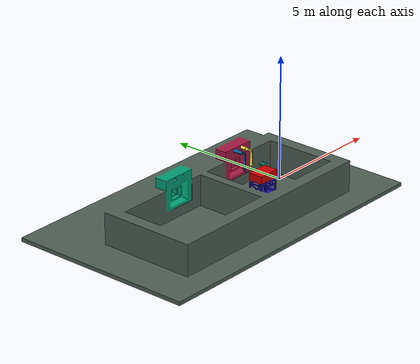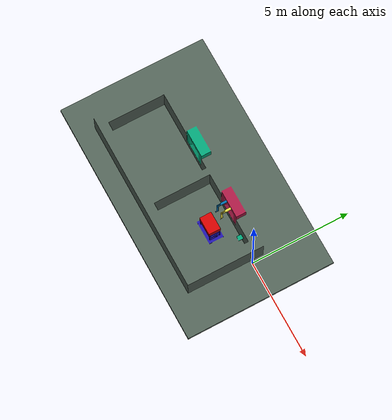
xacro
<?xml version="1.0"?>
<robot name="mrs" xmlns:xacro="http://www.ros.org/wiki/xacro">

  <!-- Constants for robot -->
  <xacro:include filename="$(find mrs_description)/urdf/common_mrs.xacro" />
  <!-- Import all Gazebo-customization elements, including Gazebo colors -->
  <xacro:include filename="$(find mrs_description)/urdf/power_base/ball_bearing.urdf.xacro" />
  <xacro:include filename="$(find mrs_description)/urdf/JM/jm.xacro" />
  <xacro:include filename="$(find mrs_description)/urdf/PCM/pcm.xacro" />

  <!-- Used for fixing robot to Gazebo 'base_link' -->
  <link name="world" >
    <inertial>
        <mass value="0.1"/>
        <origin xyz="0 0 0" rpy="0 0 0"/>
        <inertia ixx="1.0" ixy="0.0" ixz="0.0" iyy="1.0" iyz="0.0" izz="1.0"/>
      </inertial>
      <visual>
        <origin xyz="0 0 0" rpy="0 0 0"/>
        <geometry>
          <box size="0.001 0.001 0.001"/>
        </geometry>
        <material name="Red"/>
      </visual>
      <collision>
        <origin xyz="0 0 0" rpy="0 0 0"/>
        <geometry>
          <box size="0.001 0.001 0.001"/>
        </geometry>
      </collision>
    </link>
  <joint name="fixed" type="fixed">
    <axis xyz="1 0 0 " />
    <origin xyz="0 0 0.05" rpy="0 ${-pi/2} 0" />
    <parent link="world" />
    <child link="base_footprint" />
  </joint>

  <!-- Fictitious Base Link is a fictitious link(frame) that is on the ground below
    base_link origin, Dummy link-->

  <link name="base_footprint">
      <mass value="1.0" />
      <visual>
        <geometry>
          <box size="0.07 0.07 0.14" />
        </geometry>
        <material name="Blue">
        </material>
      </visual>
      <collision>
        <geometry>
          <box size="0.05 0.05 0.04" />
        </geometry>
      </collision>
      <xacro:default_inertial mass="0.15" I_tensor="8.166e-4"/>
  </link>
      <gazebo reference="base_footprint">
    <material>Gazebo/Blue</material>
    <selfCollide>false</selfCollide>
  </gazebo>

  <link name="link_hotcell">
        <!--> Not necessary to declare inertia as the body is static<-->
      <collision name="collision_hotcell">
        <geometry>
            <mesh filename="package://mrs_gazebo/models/Hotcell/meshes/Hotcell.dae" scale="5.0 5.0 5.0"/>
        </geometry>
      </collision>
      <visual name="visual_hotcell">
        <geometry>
           <mesh filename="package://mrs_gazebo/models/Hotcell/meshes/Hotcell.dae" scale="5.0 5.0 5.0"/>
        </geometry>
      </visual>
    </link>
    <link name="link_manipulator_1">
        <!--> Not necessary to declare inertia as the body is static<-->

      <collision name="collision_man1">

        <geometry>
           <mesh filename="package://mrs_gazebo/models/MT200_nuc_manipulator/meshes/Manipulator.dae" scale="0.50 0.5 0.5"/>
        </geometry>
      </collision>
      <visual name="visual_man1">
        <geometry>
           <mesh filename="package://mrs_gazebo/models/MT200_nuc_manipulator/meshes/Manipulator.dae" scale="0.50 0.5 0.5"/>
        </geometry>
      </visual>
    </link>
     <link name="link_manipulator_2">
        <!--> Not necessary to declare inertia as the body is static<-->

      <collision name="collision_man2">
        <geometry>
           <mesh filename="package://mrs_gazebo/models/MT200_nuc_manipulator/meshes/Manipulator.dae" scale="0.50 0.5 0.5"/>
        </geometry>
      </collision>
      <visual name="visual_man2">
        <geometry>
           <mesh filename="package://mrs_gazebo/models/MT200_nuc_manipulator/meshes/Manipulator.dae" scale="0.50 0.5 0.5"/>
        </geometry>
      </visual>
    </link>

    <link name="manipable_box">

      <collision name="box_coll">
        <geometry>
          <box size="0.9 0.60 0.3"/>
        </geometry>
      </collision>
      <visual name="box_visual">
        <geometry>
            <box size="0.9 0.60 0.3"/>
        </geometry>
              <material name="red"/>
      </visual>
    </link>
<joint name="fixed_hotcell_joint" type="fixed">
    <origin xyz="0 0.05 0" rpy="0 0 0"/>
    <child link="link_hotcell"/>
    <parent link="world"/>
  </joint>
    <joint name="fixed_manipulator_joint1" type="fixed">
    <origin xyz="-2.26 -0.15 0.69" rpy="0 0 0"/>
    <child link="link_manipulator_1"/>
    <parent link="link_hotcell"/>
  </joint>
<joint name="fixed_manipulator_joint2" type="fixed">
    <origin xyz="-2.65 -0.15 0.69" rpy="0 0 0"/>
    <child link="link_manipulator_2"/>
    <parent link="link_hotcell"/>
  </joint>
   <joint name="fixed_maniBox_joint1" type="fixed">
    <origin xyz="-2.2 -1.05 1.25" rpy="0 0 0"/>
    <child link="manipable_box"/>
    <parent link="link_hotcell"/>
  </joint>

</robot>

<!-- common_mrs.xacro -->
<robot name="mrs" xmlns:xacro="http://www.ros.org/wiki/xacro">

	<!-- Auxiliar Values -->
	<property name="pi" value="3.1415926535897931" />
	<property name="max_effort" value="20" />
	<property name="max_velocity" value="10" />

	<!-- Links Mass -->
	<property name="j1_mass" value="0.137" />
	<property name="j2_mass" value="0.01" />
	<property name="j3_mass" value="0.027" />
	<property name="w1_mass" value="0.089" />
	<property name="pc_mass" value="0.249" />

	<!-- Links COG -->
	<property name="j1_cog" value="-0.024 -0.021 0" />
	<property name="j2_cog" value="1.068e-4 0 4.22e-4" />
	<property name="j3_cog" value="-5.121e-4 0.014 -0.012" />
	<property name="w1_cog" value="-0.003 0 0" />
	<property name="pc_cog" value="-0.034 0 0" />

	<!-- Links Inertia -->
	<macro name="j1_inertia">
		<inertia ixx="1.043e-4" ixy="4.237e-5" ixz="8.843e-7"
		iyy="1.259e-5" iyz="-2.329e-8" izz="1.759e-4" />
	</macro>
	<macro name="j2_inertia">
		<inertia 	ixx="1.34e-6" 	ixy="2.119e-11"		ixz="7.365e-11"
							iyy="1.326e-6"	iyz="2.329e-12"
							izz="2.006e-6" />
	</macro>
	<macro name="j3_inertia">
		<inertia 	ixx="9.335e-6" ixy="1.198e-8" ixz="5.264e-9"
							iyy="5.505e-6" iyz="-2.699e-6"
							izz="6.39e-6" />
	</macro>
	<macro name="pc_inertia">
		<inertia 	ixx="4.35e-4" ixy="-5.575e-21" ixz="4.256e-21"
							iyy="4.82e-4" iyz="3.176e-21"
							izz="1.809e-4" />
	</macro>
	<macro name="w1_inertia">
		<inertia 	ixx="1.036e-4" ixy="0" ixz="0"
							iyy="5.359e-5" iyz="0"
							izz="5.359e-5" />
	</macro>
		<!-- Links orientation and origin -->
	<macro name="j1_ori">
      <origin xyz="0 0 0" rpy="${-pi/2} 0 0"/>
	</macro>
	<macro name="j2_ori">
		<origin xyz="0.044 0 0" rpy="0 0 0" />
	</macro>
	<macro name="j3_ori">
      <origin xyz="-0.5 0 0" rpy="0 0 ${-pi/2} "/>
	</macro>
	<macro name="pc_ori">
      <origin xyz="0.5 0 0" rpy="0 0 0"/>
	</macro>
	<macro name="w1_ori">
      <origin xyz="0 0 0" rpy="0 0 0 "/>
	</macro>

	<!-- MESH FILES -->
	<property name="j1_mesh" value="package://mrs_description/meshes/J1.dae" />
		<!--property name="j1_mesh" value="package://mrs_description/meshes/BASE.dae" /-->
	<property name="j2_mesh" value="package://mrs_description/meshes/J2.dae" />
	<property name="j3_mesh" value="package://mrs_description/meshes/J3.dae" />
	<property name="pc_mesh" value="package://mrs_description/meshes/Pc.dae" />
	<property name="w1_mesh" value="package://mrs_description/meshes/WR1.dae" />

	<!-- Link's Macro -->
	<macro name="create_link" params="name color mesh mass cog *inertia instance prefix">
		<link name="${instance}_${prefix}_${name}">
			<visual>
				<!--xacro:insert_block name="ori" /-->
				<geometry>
					<mesh filename="${mesh}" />
				</geometry>
				<material name="${color}" />
			</visual>
			<collision>
				<!--xacro:insert_block name="ori" /-->
				<geometry>
					<mesh filename="${mesh}" />
				</geometry>
			</collision>
			<inertial>
				<origin xyz="${cog}" rpy="0 0 0" />
				<mass value="${mass}" />
				<xacro:insert_block name="inertia" />
			</inertial>
		</link>
	</macro>

	<macro name="create_link_no_collision" params="name color mesh mass cog *inertia instance prefix">
		<link name="${instance}_${prefix}_${name}">
			<visual>
				<!--xacro:insert_block name="ori" /-->
				<geometry>
					<mesh filename="${mesh}" />
				</geometry>
				<material name="${color}" />
			</visual>
			<inertial>
				<origin xyz="${cog}" rpy="0 0 0" />
				<mass value="${mass}" />
				<xacro:insert_block name="inertia" />
			</inertial>
		</link>
	</macro>
	<!-- Transmission's Macro -->
	<macro name="simple_transmission" params="joint">
		<transmission name="${joint}tran">
			<type>transmission_interface/SimpleTransmission</type>
			<joint name="${joint}" />
			<actuator name="${joint}_motor">
				<hardwareInterface>EffortJointInterface</hardwareInterface>
				<mechanicalReduction>1</mechanicalReduction>
			</actuator>
		</transmission>
	</macro>

	<!-- Joints Dynamics -->
	<property name="j1_damping" value="0" />
	<property name="j2_damping" value="0" />
	<property name="j3_damping" value="0" />
	<property name="w1_damping" value="0" />

</robot>

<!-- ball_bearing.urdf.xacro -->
<robot xmlns:xacro="http://www.ros.org/wiki/xacro">

		<!-- Constants for robot -->
	<xacro:include filename="$(find mrs_description)/urdf/common_mrs.xacro" />
  <!-- simplified box collision geometry for base -->

  <property name="mass" value="22.0"/>

 <macro name="Ball_bearing" params="mass instance dia x y z parent">
  <joint name="bearing_joint_${instance}" type="fixed">
    <origin rpy="0 0 0" xyz="${x} ${y} ${z}"/>
    <parent link="${parent}"/>
    <child link="bearing_link1_${instance}"/>
  </joint>
  <link name="bearing_link1_${instance}">
    <inertial>
      <mass value="${mass}"/>
      <origin xyz="0 0 0"/>
      <inertia ixx="${2/5*mass*dia/2*dia/2}" ixy="0" ixz="0" iyy="${2/5*mass*dia/2*dia/2}" iyz="0" izz="${2/5*mass*dia/2*dia/2}"/>
    </inertial>

  </link>
   <link name="bearing_link2_${instance}">
      <inertial>
        <mass value="${mass}"/>
        <origin xyz="0 0 0"/>
        <inertia ixx="${2/5*mass*dia/2*dia/2}" ixy="0" ixz="0" iyy="${2/5*mass*dia/2*dia/2}" iyz="0" izz="${2/5*mass*dia/2*dia/2}"/>
      </inertial>
      <visual>
      <origin rpy="0 0 0" xyz="0 0 0"/>
      <geometry>
        <sphere radius="${dia/2}"/>
      </geometry>
      <material name="Orange"/>
    </visual>
    <collision>
      <origin rpy="0 0 0" xyz="0 0 0"/>
      <geometry>
        <sphere radius="${dia/2}"/>
      </geometry>
      <contact_coefficients> <mu>0.0</mu> </contact_coefficients>
    </collision>
    </link>
      <joint name="bearing_joint2_${instance}" type="fixed">
    <origin rpy="0 0 0" xyz="0 0 0"/>
    <parent link="bearing_link1_${instance}"/>
    <child link="bearing_link2_${instance}"/>
  </joint>

  	<gazebo reference="bearing_link1_${instance}">
		<material>Gazebo/Black</material>
		<selfCollide>false</selfCollide>
	</gazebo>
	<gazebo reference="bearing_link2_${instance}">
		<material>Gazebo/Black</material>
		<selfCollide>false</selfCollide>
	</gazebo>

	</macro>
	</robot>

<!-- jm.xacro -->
<robot name="mrs" xmlns:xacro="http://www.ros.org/wiki/xacro">

  <!-- Constants for robot -->
  <xacro:include filename="$(find mrs_description)/urdf/common_mrs.xacro" />
  <!-- Import all Gazebo-customization elements, including Gazebo colors -->
  <xacro:include filename="$(find mrs_description)/urdf/JM/jm.gazebo.xacro" />
  <!-- Import Rviz colors -->

  <xacro:include filename="$(find mrs_description)/urdf/materials.urdf.xacro" />

<macro name="JM1_armconnect" params="name prefix instance parent">
  <!-- Links -->
  <create_link name="j1_link" color="Blue" mesh="${j1_mesh}"
    cog="${j1_cog}" mass="${j1_mass}" instance="${instance}" prefix="${prefix}">
    <j1_inertia />
  </create_link>

  <create_link_no_collision name="j2_link" color="Blue" mesh="${j2_mesh}"
    cog="${j2_cog}" mass="${j2_mass}" instance="${instance}" prefix="${prefix}">
    <j2_inertia />
  </create_link_no_collision>
  <create_link_no_collision name="j3_link" color="Blue" mesh="${j3_mesh}"
    cog="${j3_cog}" mass="${j3_mass}" instance="${instance}" prefix="${prefix}">
    <j3_inertia />
  </create_link_no_collision>
  <create_link name="w1_link" color="Blue" mesh="${w1_mesh}"
    cog="${w1_cog}" mass="${w1_mass}" instance="${instance}" prefix="${prefix}">
    <w1_inertia />
  </create_link>

  <!-- Joints -->

  <joint name="${instance}_${prefix}_j3" type="continuous">
    <child link="${instance}_${prefix}_w1_link" />
    <parent link="${parent}" />
    <axis xyz="0 0 1 " />
    <origin xyz="0 0 0.01" rpy="${-pi/2} 0 0" />
    <limit lower="${-pi/2}" upper="${pi/2}" effort="${max_effort}"
      velocity="${max_velocity}" />
    <dynamics damping="${j3_damping}" />
 </joint>
  <joint name="${instance}_${prefix}_j2_fixed" type="fixed">
    <child link="${instance}_${prefix}_j3_link" />
    <parent link="${instance}_${prefix}_w1_link" />
    <origin xyz="0.045 0 0" rpy="0 0 ${pi/2}" />
  </joint>

  <joint name="${instance}_${prefix}_j2" type="revolute">
    <child link="${instance}_${prefix}_j1_link" />
    <parent link="${instance}_${prefix}_j3_link" />
    <axis xyz="1 0 0 " />
    <origin xyz="0 0 0" rpy="0 ${-pi/2} 0" />
    <limit lower="${-pi/2}" upper="${pi/2}" effort="${max_effort}"
      velocity="${max_velocity}" />
    <dynamics damping="${j2_damping}" />
  </joint>

  <joint name="${instance}_${prefix}_j1" type="continuous">
    <child link="${instance}_${prefix}_j2_link" />
    <parent link="${instance}_${prefix}_j1_link" />
    <axis xyz="0 0 1 " />
    <origin xyz="0 -0.058 0" rpy="${pi/2} 0 0" />
    <limit lower="${-pi/2}" upper="${pi/2}" effort="${max_effort}"
      velocity="${max_velocity}" />
    <dynamics damping="${j3_damping}" />
  </joint>

    <!-- Transmissions -->
  <simple_transmission joint="${instance}_${prefix}_j1" />
  <simple_transmission joint="${instance}_${prefix}_j2" />
  <simple_transmission joint="${instance}_${prefix}_j3" />

    <!-- Gazebo  -->
  <xacro:JMG name="${name}_gazebo" prefix="${prefix}" instance="${instance}" />

  </macro>

<macro name="JM1" params="name prefix instance parent">
  <!-- Links -->
  <create_link name="j1_link" color="Blue" mesh="${j1_mesh}"
    cog="${j1_cog}" mass="${j1_mass}" instance="${instance}" prefix="${prefix}">
    <j1_inertia />
  </create_link>

  <create_link_no_collision name="j2_link" color="Blue" mesh="${j2_mesh}"
    cog="${j2_cog}" mass="${j2_mass}" instance="${instance}" prefix="${prefix}">
    <j2_inertia />
  </create_link_no_collision>
  <create_link_no_collision name="j3_link" color="Blue" mesh="${j3_mesh}"
    cog="${j3_cog}" mass="${j3_mass}" instance="${instance}" prefix="${prefix}">
    <j3_inertia />
  </create_link_no_collision>
  <create_link name="w1_link" color="Blue" mesh="${w1_mesh}"
    cog="${w1_cog}" mass="${w1_mass}" instance="${instance}" prefix="${prefix}">
    <w1_inertia />
  </create_link>

  <!-- Joints -->

    <joint name="${instance}_${prefix}_j3" type="fixed">
    <child link="${instance}_${prefix}_w1_link" />
    <parent link="${parent}" />
    <axis xyz="0 0 1 " />
    <origin xyz="0 0 0.01" rpy="0 ${-pi/2} 0" />
  </joint>

  <joint name="${instance}_${prefix}_j2_fixed" type="fixed">
    <child link="${instance}_${prefix}_j3_link" />
    <parent link="${instance}_${prefix}_w1_link" />
    <origin xyz="0.045 0 0" rpy="0 0 ${pi/2}" />
  </joint>

  <joint name="${instance}_${prefix}_j2" type="revolute">
    <child link="${instance}_${prefix}_j1_link" />
    <parent link="${instance}_${prefix}_j3_link" />
    <axis xyz="1 0 0 " />
    <origin xyz="0 0 0" rpy="0 ${-pi/2} 0" />
    <limit lower="${-pi/2}" upper="${pi/2}" effort="${max_effort}"
      velocity="${max_velocity}" />
    <dynamics damping="${j2_damping}" />
  </joint>

  <joint name="${instance}_${prefix}_j1" type="revolute">
    <child link="${instance}_${prefix}_j2_link" />
    <parent link="${instance}_${prefix}_j1_link" />
    <axis xyz="0 0 1 " />
    <origin xyz="0 -0.058 0" rpy="${pi/2} 0 0" />
    <limit lower="${-pi/2}" upper="${pi/2}" effort="${max_effort}"
      velocity="${max_velocity}" />
    <dynamics damping="${j3_damping}" />
  </joint>

    <!-- Transmissions -->
  <simple_transmission joint="${instance}_${prefix}_j1" />
  <simple_transmission joint="${instance}_${prefix}_j2" />

    <!-- Gazebo  -->
  <xacro:JMG name="${name}_gazebo" prefix="${prefix}" instance="${instance}" />

  </macro>

<macro name="JM1_kinematic" params="name prefix instance parent">
  <!-- Links -->
  <create_link name="j1_link" color="Grey" mesh="${j1_mesh}"
    cog="${j1_cog}" mass="${j1_mass}" instance="${instance}" prefix="${prefix}">
    <j1_inertia />
  </create_link>

  <link name="1_L1_j2_link">
      <visual>
        <geometry>
          <cylinder length="0.15" radius=".03" />
        </geometry>
        <origin rpy="0 0 0 " xyz="0 0 0" />
        <material name="Gray">
          <color rgba=".7 .7 .7 1" />
        </material>
      </visual>
      <collision>
        <geometry>
          <cylinder length="0.06" radius=".01" />
        </geometry>
      </collision>
    </link>
  <create_link name="w1_link" color="Black" mesh="${w1_mesh}"
    cog="${w1_cog}" mass="${w1_mass}" instance="${instance}" prefix="${prefix}">
    <w1_inertia />
  </create_link>

  <!-- Joints -->

  <joint name="${instance}_${prefix}_j3" type="revolute">
    <child link="${instance}_${prefix}_w1_link" />
    <parent link="${parent}" />
    <axis xyz="1 0 0 " />
    <origin xyz="0 0 0.01" rpy="0 ${-pi/2} 0" />
    <limit lower="${-pi}" upper="${pi}" effort="${max_effort}"
      velocity="${max_velocity}" />
    <dynamics damping="${j3_damping}" />

  </joint>

  <joint name="${instance}_${prefix}_j2" type="revolute">
    <child link="${instance}_${prefix}_j1_link" />
    <parent link="${instance}_${prefix}_w1_link" />
    <axis xyz="1 0 0 " />
    <origin xyz="0.045 0 0" rpy="0 ${pi/2} ${pi/2}" />
    <limit lower="${-pi/2}" upper="${pi/2}" effort="${max_effort}"
      velocity="${max_velocity}" />
    <dynamics damping="${j2_damping}" />
  </joint>

  <joint name="${instance}_${prefix}_j1" type="revolute">
    <child link="${instance}_${prefix}_j2_link" />
    <parent link="${instance}_${prefix}_j1_link" />
    <axis xyz="0 1 0 " />
    <origin xyz="0 -0.125 0" rpy="${pi/2} 0 0" />
    <limit lower="${-pi/2}" upper="${pi/2}" effort="${max_effort}"
      velocity="${max_velocity}" />
    <dynamics damping="${j3_damping}" />
  </joint>

    <!-- Transmissions -->
  <simple_transmission joint="${instance}_${prefix}_j1" />
  <simple_transmission joint="${instance}_${prefix}_j2" />
  <simple_transmission joint="${instance}_${prefix}_j3" />

    <!-- Gazebo  -->
  <xacro:JMG name="${name}_gazebo" prefix="${prefix}" instance="${instance}" />
  </macro>
<macro name="JM2" params="name prefix instance parent reflect shift shift2">
  <create_link name="j1_link" color="Blue" mesh="${j1_mesh}"
    cog="${j1_cog}" mass="${j1_mass}" instance="${instance}" prefix="${prefix}">
    <j1_inertia />
  </create_link>

  <create_link_no_collision name="j2_link" color="Blue" mesh="${j2_mesh}"
    cog="${j2_cog}" mass="${j2_mass}" instance="${instance}" prefix="${prefix}">
    <j2_inertia />
  </create_link_no_collision>
  <create_link_no_collision name="j3_link" color="Blue" mesh="${j3_mesh}"
    cog="${j3_cog}" mass="${j3_mass}" instance="${instance}" prefix="${prefix}">
    <j3_inertia />
  </create_link_no_collision>
  <create_link name="w1_link" color="Blue" mesh="${w1_mesh}"
    cog="${w1_cog}" mass="${w1_mass}" instance="${instance}" prefix="${prefix}">
    <w1_inertia />
  </create_link>

  <joint name="${instance}_${prefix}_j3" type="revolute">
    <child link="${instance}_${prefix}_w1_link" />
    <parent link="${instance}_${prefix}_j3_link" />
    <axis xyz="1 0 0" />
    <origin xyz="0 0.05 0" rpy="0 0 ${-pi/2}" />
    <limit lower="${-pi}" upper="${pi}" effort="${max_effort}"
      velocity="${max_velocity}" />
    <dynamics damping="${j1_damping}" />
  </joint>

  <joint name="${instance}_${prefix}_j2" type="revolute">
    <child link="${instance}_${prefix}_j3_link" />
    <parent link="${instance}_${prefix}_j1_link" />
    <axis xyz="0 0 1 " />
    <origin xyz="0 0 0" rpy="0 ${pi/2} 0" />
    <limit lower="${-pi/2}" upper="${pi/2}" effort="${max_effort}"
      velocity="${max_velocity}" />
    <dynamics damping="${j2_damping}" />
  </joint>

  <joint name="${instance}_${prefix}_j2_fixed" type="fixed">
    <child link="${instance}_${prefix}_j1_link" />
    <parent link="${instance}_${prefix}_j2_link" />
    <axis xyz="1 0 0 " />
    <origin xyz="0 0 0.058" rpy="${pi/2} 0 ${pi/2}" />
  </joint>

  <joint name="${instance}_${prefix}_j1" type="revolute">
    <child link="${instance}_${prefix}_j2_link" />
    <parent link="${parent}" />
    <axis xyz="0 0 1 " />
    <origin xyz="${shift*reflect} 0 ${shift*shift2}" rpy="0 ${reflect*pi/2} 0" />
    <limit lower="0" upper="${pi}" effort="${max_effort}"
      velocity="${max_velocity}" />
    <dynamics damping="${j3_damping}" />
  </joint>
    <!-- Transmissions -->
  <simple_transmission joint="${instance}_${prefix}_j1" />
  <simple_transmission joint="${instance}_${prefix}_j2" />
  <simple_transmission joint="${instance}_${prefix}_j3" />

  <!-- Gazebo  -->
  <xacro:JMG name="${name}_gazebo" prefix="${prefix}" instance="${instance}" />
  </macro>

<macro name="JM2_3DOF_kinematic" params="name prefix instance parent reflect shift shift2">
  <create_link name="j1_link" color="Grey" mesh="${j1_mesh}"
    cog="${j1_cog}" mass="${j1_mass}" instance="${instance}" prefix="${prefix}">
    <j1_inertia />
  </create_link>

  <create_link name="j3_link" color="Grey" mesh="${j3_mesh}"
    cog="${j3_cog}" mass="${j3_mass}" instance="${instance}" prefix="${prefix}">
    <j3_inertia />
  </create_link>

  <create_link name="w1_link" color="Black" mesh="${w1_mesh}"
    cog="${w1_cog}" mass="${w1_mass}" instance="${instance}" prefix="${prefix}">
    <w1_inertia />
  </create_link>

  <joint name="${instance}_${prefix}_j3" type="revolute">
    <child link="${instance}_${prefix}_w1_link" />
    <parent link="${instance}_${prefix}_j3_link" />
    <axis xyz="1 0 0" />
    <origin xyz="0 0.055 0" rpy="0 0 ${-pi/2}" />
    <limit lower="${-pi}" upper="${pi}" effort="${max_effort}"
      velocity="${max_velocity}" />
    <dynamics damping="${j1_damping}" />
  </joint>

  <joint name="${instance}_${prefix}_j2" type="revolute">
    <child link="${instance}_${prefix}_j3_link" />
    <parent link="${instance}_${prefix}_j1_link" />
    <axis xyz="0 0 1" />
    <origin xyz="0 0.02 0" rpy="0 ${pi/2} 0" />
    <limit lower="${-pi/3}" upper="${pi/3}" effort="${max_effort}"
      velocity="${max_velocity}" />
    <dynamics damping="${j2_damping}" />
  </joint>

  <joint name="${instance}_${prefix}_j1" type="continuous">
    <child link="${instance}_${prefix}_j1_link" />
    <parent link="${parent}" />
    <axis xyz="0 1 0" />
    <origin xyz="0 0 ${shift}" rpy=" ${pi/2} 0 0" />
  </joint>
    <!-- Transmissions -->
  <simple_transmission joint="${instance}_${prefix}_j1" />
  <simple_transmission joint="${instance}_${prefix}_j2" />
  <simple_transmission joint="${instance}_${prefix}_j3" />

  <!-- Gazebo  -->
  <xacro:JMG name="${name}_gazebo" prefix="${prefix}" instance="${instance}" />
  </macro>
<macro name="JM2_kinematic" params="name prefix instance parent reflect shift shift2">

  <create_link name="j1_link" color="Blue" mesh="${j1_mesh}"
    cog="${j1_cog}" mass="${j1_mass}" instance="${instance}" prefix="${prefix}">
    <j1_inertia />
  </create_link>

  <create_link name="j3_link" color="Blue" mesh="${j3_mesh}"
    cog="${j3_cog}" mass="${j3_mass}" instance="${instance}" prefix="${prefix}">
    <j3_inertia />
  </create_link>

  <joint name="${instance}_${prefix}_j3" type="revolute">
    <child link="${instance}_${prefix}_j3_link" />
    <parent link="${instance}_${prefix}_j1_link" />
    <axis xyz="0 0 1" />
    <origin xyz="0 0.01 0" rpy="0 ${pi/2} 0" />
    <limit lower="${-pi/2}" upper="${pi/2}" effort="${max_effort}"
      velocity="${max_velocity}" />
    <dynamics damping="${j1_damping}" />
  </joint>

  <joint name="${instance}_${prefix}_j1" type="revolute">
    <child link="${instance}_${prefix}_j1_link" />
    <parent link="${parent}" />
    <axis xyz="0 1 0 " />
    <origin xyz="${shift} 0 ${shift*shift2}" rpy=" 0 0 ${-pi/2}" />
    <limit lower="0" upper="${pi}" effort="${max_effort}"
      velocity="${max_velocity}" />
    <dynamics damping="${j3_damping}" />
  </joint>
    <!-- Transmissions -->
  <simple_transmission joint="${instance}_${prefix}_j1" />
  <simple_transmission joint="${instance}_${prefix}_j2" />
  <simple_transmission joint="${instance}_${prefix}_j3" />

  <!-- Gazebo  -->
  <xacro:JMG name="${name}_gazebo" prefix="${prefix}" instance="${instance}" />
  </macro>

<macro name="JM3" params="name prefix instance parent reflect shift">
  <create_link name="j1_link" color="Blue" mesh="${j1_mesh}"
    cog="${j1_cog}" mass="${j1_mass}" instance="${instance}" prefix="${prefix}">
    <j1_inertia />
  </create_link>

  <create_link_no_collision name="j2_link" color="Blue" mesh="${j2_mesh}"
    cog="${j2_cog}" mass="${j2_mass}" instance="${instance}" prefix="${prefix}">
    <j2_inertia />
  </create_link_no_collision>
  <create_link_no_collision name="j3_link" color="Blue" mesh="${j3_mesh}"
    cog="${j3_cog}" mass="${j3_mass}" instance="${instance}" prefix="${prefix}">
    <j3_inertia />
  </create_link_no_collision>
  <create_link name="w1_link" color="Blue" mesh="${w1_mesh}"
    cog="${w1_cog}" mass="${w1_mass}" instance="${instance}" prefix="${prefix}">
    <w1_inertia />
  </create_link>

  <joint name="${instance}_${prefix}_j3" type="continuous">
    <child link="${instance}_${prefix}_w1_link" />
    <parent link="${instance}_${prefix}_j3_link" />
    <axis xyz="1 0 0" />
    <origin xyz="0 0.05 0" rpy="0 0 ${-pi/2}" />
  </joint>

  <joint name="${instance}_${prefix}_j2" type="revolute">
    <child link="${instance}_${prefix}_j3_link" />
    <parent link="${instance}_${prefix}_j1_link" />
    <axis xyz="0 0 1 " />
    <origin xyz="0 0 0" rpy="0 ${pi/2} 0" />
    <limit lower="${-pi/2}" upper="${pi/2}" effort="${max_effort}"
      velocity="${max_velocity}" />
    <dynamics damping="${j2_damping}" />
  </joint>

  <joint name="${instance}_${prefix}_j2_fixed" type="fixed">
    <child link="${instance}_${prefix}_j1_link" />
    <parent link="${instance}_${prefix}_j2_link" />
    <axis xyz="1 0 0 " />
    <origin xyz="0 0 0.058" rpy="${pi/2} 0 ${pi/2}" />
  </joint>

  <joint name="${instance}_${prefix}_j1" type="continuous">
    <child link="${instance}_${prefix}_j2_link" />
    <parent link="${parent}" />

    <origin xyz="${shift} 0 0" rpy="0 ${pi/2} 0" />
  </joint>
    <!-- Transmissions -->
  <simple_transmission joint="${instance}_${prefix}_j1" />
  <simple_transmission joint="${instance}_${prefix}_j2" />
  <simple_transmission joint="${instance}_${prefix}_j3" />

  <!-- Gazebo  -->
  <xacro:JMG name="${name}_gazebo" prefix="${prefix}" instance="${instance}" />
  </macro>

<macro name="JM3_solid" params="name prefix instance parent reflect shift">
  <create_link name="j1_link" color="Blue" mesh="${j1_mesh}"
    cog="${j1_cog}" mass="${j1_mass}" instance="${instance}" prefix="${prefix}">
    <j1_inertia />
  </create_link>

  <create_link_no_collision name="j2_link" color="Blue" mesh="${j2_mesh}"
    cog="${j2_cog}" mass="${j2_mass}" instance="${instance}" prefix="${prefix}">
    <j2_inertia />
  </create_link_no_collision>
  <create_link_no_collision name="j3_link" color="Blue" mesh="${j3_mesh}"
    cog="${j3_cog}" mass="${j3_mass}" instance="${instance}" prefix="${prefix}">
    <j3_inertia />
  </create_link_no_collision>
  <create_link name="w1_link" color="Blue" mesh="${w1_mesh}"
    cog="${w1_cog}" mass="${w1_mass}" instance="${instance}" prefix="${prefix}">
    <w1_inertia />
  </create_link>

  <joint name="${instance}_${prefix}_j3" type="fixed">
    <child link="${instance}_${prefix}_w1_link" />
    <parent link="${instance}_${prefix}_j3_link" />
    <axis xyz="1 0 0" />
    <origin xyz="0 0.05 0" rpy="0 0 ${-pi/2}" />
  </joint>

  <joint name="${instance}_${prefix}_j2" type="fixed">
    <child link="${instance}_${prefix}_j3_link" />
    <parent link="${instance}_${prefix}_j1_link" />
    <axis xyz="0 0 1 " />
    <origin xyz="0 0 0" rpy="0 ${pi/2} 0" />
  </joint>

  <joint name="${instance}_${prefix}_j2_fixed" type="fixed">
    <child link="${instance}_${prefix}_j1_link" />
    <parent link="${instance}_${prefix}_j2_link" />
    <axis xyz="1 0 0 " />
    <origin xyz="0 0 0.058" rpy="${pi/2} 0 ${pi/2}" />
  </joint>

  <joint name="${instance}_${prefix}_j1" type="fixed">
    <child link="${instance}_${prefix}_j2_link" />
    <parent link="${parent}" />

    <origin xyz="${shift} 0 0" rpy="0 ${pi/2} 0" />
  </joint>
    <!-- Transmissions -->

  <!-- Gazebo  -->
  <xacro:JMG name="${name}_gazebo" prefix="${prefix}" instance="${instance}" />
  </macro>

</robot>

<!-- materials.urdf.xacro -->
<robot>

  <material name="Blue">
    <color rgba="0.0 0.0 0.8 1.0"/>
  </material>

  <material name="Grey">
    <color rgba="0.7 0.7 0.7 1.0"/>
  </material>

  <material name="Grey2">
    <color rgba="0.9 0.9 0.9 1.0"/>
  </material>

  <material name="Red">
    <color rgba="0.8 0.0 0.0 1.0"/>
  </material>

  <material name="White">
    <color rgba="1.0 1.0 1.0 1.0"/>
  </material>

  <material name="Black">
    <color rgba="0.1 0.1 0.1 1.0"/>
  </material>

  <material name="LightGrey">
    <color rgba="0.6 0.6 0.6 1.0"/>
  </material>

    <material name="Orange">
    <color rgba="1.0 0.4 0.0 1.0"/>
  </material>

  <material name="DarkGrey">
    <color rgba="0.3 0.3 0.3 1.0"/>
  </material>

  <material name="Green">
    <color rgba="0.0 1.0 0.0 1.0"/>
  </material>

  <material name="Caster">
    <texture filename="package://pr2_description/materials/textures/pr2_caster_texture.png" />
  </material>

  <material name="Wheel_l">
    <texture filename="package://pr2_description/materials/textures/pr2_wheel_left.png" />
  </material>

  <material name="Wheel_r">
    <texture filename="package://pr2_description/materials/textures/pr2_wheel_right.png" />
  </material>

  <material name="RollLinks">
    <texture filename="package://pr2_description/materials/textures/pr2_wheel_left.png" />
  </material>

</robot>

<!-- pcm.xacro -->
<robot name="mrs" xmlns:xacro="http://www.ros.org/wiki/xacro">

    <!-- Constants for robot -->
    <xacro:include filename="$(find mrs_description)/urdf/common_mrs.xacro" />
    <!-- Import all Gazebo-customization elements, including Gazebo colors -->
    <xacro:include filename="$(find mrs_description)/urdf/PCM/pcm.gazebo.xacro" />
    <!-- Import Rviz colors -->
    <xacro:include filename="$(find mrs_description)/urdf/materials.xacro" />

    <xacro:macro name="default_inertial" params="mass I_tensor">
        <inertial>
            <mass value="${mass}" />
<!--
            Inertia of a cuboid - ml2/6
-->
            <inertia ixx="${I_tensor*1.0}" ixy="0.0" ixz="0.0" iyy="${I_tensor*1.0}" iyz="0.0"
                izz="${I_tensor*1.0}" />
        </inertial>
    </xacro:macro>

    <xacro:macro name="PcModule_flex" params="parent prefix instance shift">
        <link name="${prefix}_PCmodule">
            <visual>
                <geometry>
                    <box size="0.07 0.07 0.07" />
                </geometry>
                <material name="Blue">
                </material>
            </visual>
            <collision>
                <geometry>
                    <box size="0.07 0.07 0.04" />
                </geometry>
            </collision>
            <xacro:default_inertial mass="0.15" I_tensor="8.166e-4"/>
        </link>
        <joint name="${instance}_${prefix}_mbase_jointW1" type="fixed">
            <origin xyz="0 ${shift*instance*0.035} 0" rpy=" ${-pi/2} 0 0" />
            <child link="${prefix}_PCmodule" />
            <parent link="${parent}" />
        </joint>

    <!-- Gazebo  -->
    <xacro:PCMG name="${prefix}_pcm_gazebo" prefix="${prefix}" instance="${instance}" />
    </xacro:macro>

    <xacro:macro name="PcModule" params="parent prefix instance">
        <link name="${prefix}_PCmodule">
            <visual>
                <geometry>
                    <box size="0.07 0.07 0.07" />
                </geometry>
                <material name="Blue">
                </material>
            </visual>
            <collision>
                <geometry>
                    <box size="0.07 0.07 0.04" />
                </geometry>
            </collision>
            <xacro:default_inertial mass="0.15" I_tensor="8.166e-4"/>
        </link>
        <joint name="${instance}_${prefix}_mbase_jointW1" type="fixed">
            <origin xyz="0 0 ${instance*0.035}" rpy="0 0 0" />
            <child link="${prefix}_PCmodule" />
            <parent link="${parent}" />
        </joint>

    <!-- Gazebo  -->
    <xacro:PCMG name="${prefix}_pcm_gazebo" prefix="${prefix}" instance="${instance}" />
    </xacro:macro>

    <xacro:macro name="PcModule_Prismatic" params="parent prefix reflect">
        <link name="${prefix}_PCmodule">
            <visual>
                <geometry>
                    <box size="0.07 0.05 0.05" />
                </geometry>
                <material name="Orange">
                </material>
            </visual>
            <xacro:default_inertial mass="0.15" I_tensor="8.166e-4"/>
        </link>
        <joint name="${prefix}_mbase_jointW1" type="prismatic">
            <origin xyz="0 0 ${reflect*0.035}" rpy="0 ${-reflect*pi/2} 0" />
            <child link="${prefix}_PCmodule" />
            <parent link="${parent}" />
            <limit lower="0" upper="0.03" effort="${max_effort}"
            velocity="${max_velocity}" />
        </joint>
    <simple_transmission joint="${prefix}_mbase_jointW1" />
    <!-- Gazebo  -->
    <xacro:PCMG name="${prefix}_pcm_gazebo" prefix="${prefix}" instance="${reflect}" />
    </xacro:macro>

    <xacro:macro name="PcModule_Prismatic_arm" params="parent prefix reflect shift">
        <link name="${prefix}_PCmodule">
            <visual>
                <geometry>
                    <box size="0.07 0.05 0.05" />
                </geometry>
                <material name="Orange">
                </material>
            </visual>
            <xacro:default_inertial mass="0.15" I_tensor="8.166e-4"/>
        </link>
        <joint name="${prefix}_mbase_jointW1" type="prismatic">
            <origin xyz="0 0 ${reflect*shift}" rpy="0 ${-reflect*pi/2} 0" />
            <child link="${prefix}_PCmodule" />
            <parent link="${parent}" />
            <limit lower="0" upper="0.07" effort="${max_effort}"
            velocity="${max_velocity}" />
        </joint>
    <simple_transmission joint="${prefix}_mbase_jointW1" />
    <!-- Gazebo  -->
    <xacro:PCMG name="${prefix}_pcm_gazebo" prefix="${prefix}" instance="${reflect}" />
    </xacro:macro>

    <xacro:macro name="PcModule_Prismatic" params="parent prefix reflect">
        <link name="${prefix}_PCmodule">
            <visual>
                <geometry>
                    <box size="0.07 0.05 0.05" />
                </geometry>
                <material name="Orange">
                </material>
            </visual>
            <xacro:default_inertial mass="0.15" I_tensor="8.166e-4"/>
        </link>
        <joint name="${prefix}_mbase_jointW1" type="prismatic">
            <origin xyz="0 0 ${reflect*0.035}" rpy="0 ${-reflect*pi/2} 0" />
            <child link="${prefix}_PCmodule" />
            <parent link="${parent}" />
            <limit lower="0" upper="0.03" effort="${max_effort}"
            velocity="${max_velocity}" />
        </joint>
    <simple_transmission joint="${prefix}_mbase_jointW1" />
    <!-- Gazebo  -->
    <xacro:PCMG name="${prefix}_pcm_gazebo" prefix="${prefix}" instance="${reflect}" />
    </xacro:macro>

    <xacro:macro name="PcModule_Prismatic_kinematic" params="parent prefix reflect shift">
        <link name="${prefix}_PCmodule">
            <visual>
                <geometry>
                    <box size="0.14 0.06 0.05" />
                </geometry>
                <material name="Blue">
                </material>
            </visual>
            <xacro:default_inertial mass="0.15" I_tensor="8.166e-4"/>
        </link>
        <joint name="${prefix}_mbase_jointW1" type="prismatic">
            <origin xyz="0 0 ${reflect*shift}" rpy="0 ${-reflect*pi/2} 0" />
            <child link="${prefix}_PCmodule" />
            <parent link="${parent}" />
            <limit lower="0" upper="0.07" effort="${max_effort}"
            velocity="${max_velocity}" />
        </joint>
    <simple_transmission joint="${prefix}_mbase_jointW1" />
    <!-- Gazebo  -->
    <xacro:PCMG name="${prefix}_pcm_gazebo" prefix="${prefix}" instance="${reflect}" />
    </xacro:macro>

    <xacro:macro name="PcModule_solid" params="parent prefix reflect">
        <link name="${prefix}_PCmodule">
            <visual>
                <geometry>
                    <box size="0.07 0.05 0.05" />
                </geometry>
                <material name="Orange">
                </material>
            </visual>
            <xacro:default_inertial mass="0.15" I_tensor="8.166e-4"/>
        </link>
        <joint name="${prefix}_mbase_jointW1" type="fixed">
            <origin xyz="0 0 ${reflect*0.035}" rpy="0 ${-reflect*pi/2} 0" />
            <child link="${prefix}_PCmodule" />
            <parent link="${parent}" />>
        </joint>
    <!-- Gazebo  -->
    <xacro:PCMG name="${prefix}_pcm_gazebo" prefix="${prefix}" instance="${reflect}" />
    </xacro:macro>
</robot>

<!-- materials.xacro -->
<robot>

  <material name="blue">
    <color rgba="0.0 0.0 0.8 1.0"/>
  </material>

  <material name="green">
    <color rgba="0.0 0.8 0.0 1.0"/>
  </material>

  <material name="grey">
    <color rgba="0.2 0.2 0.2 1.0"/>
  </material>

  <material name="orange">
    <color rgba="${255/255} ${108/255} ${10/255} 1.0"/>
  </material>

  <material name="brown">
    <color rgba="${222/255} ${207/255} ${195/255} 1.0"/>
  </material>

  <material name="red">
    <color rgba="0.8 0.0 0.0 1.0"/>
  </material>

  <material name="white">
    <color rgba="1.0 1.0 1.0 1.0"/>
  </material>

</robot>
